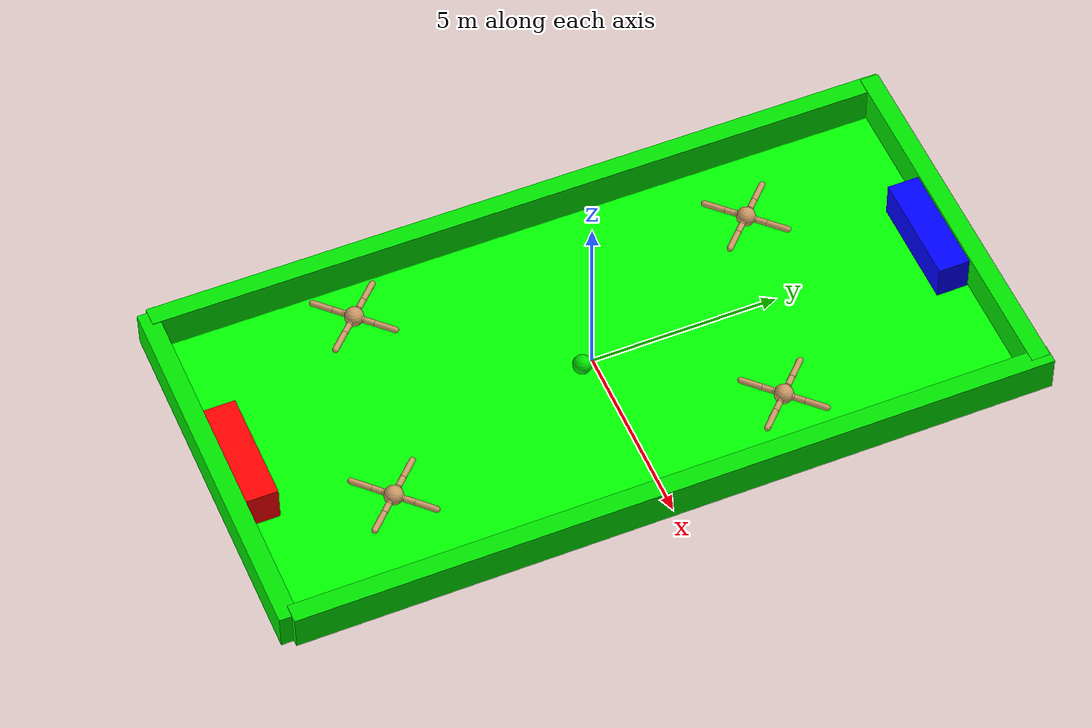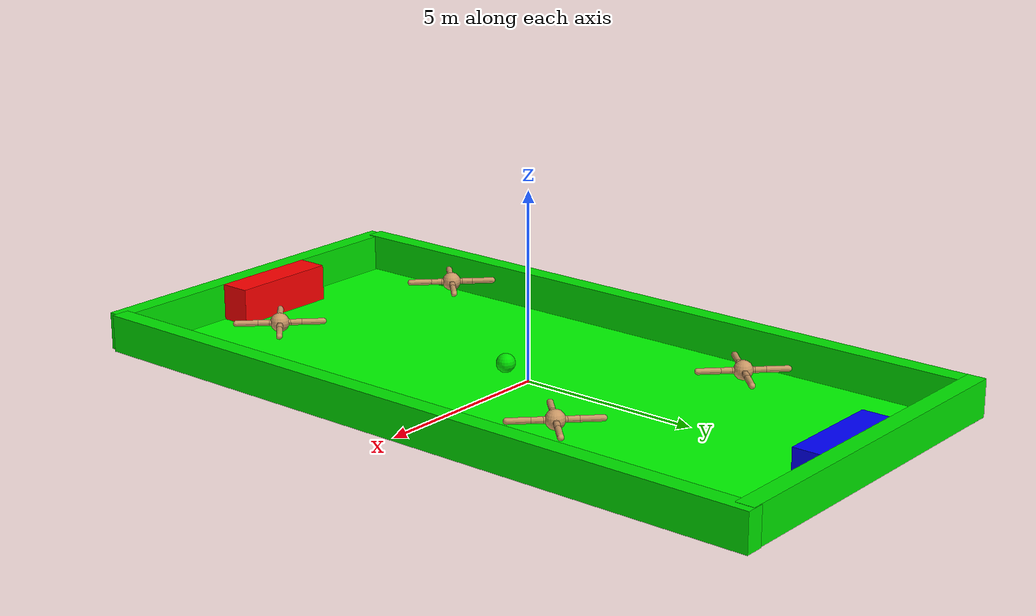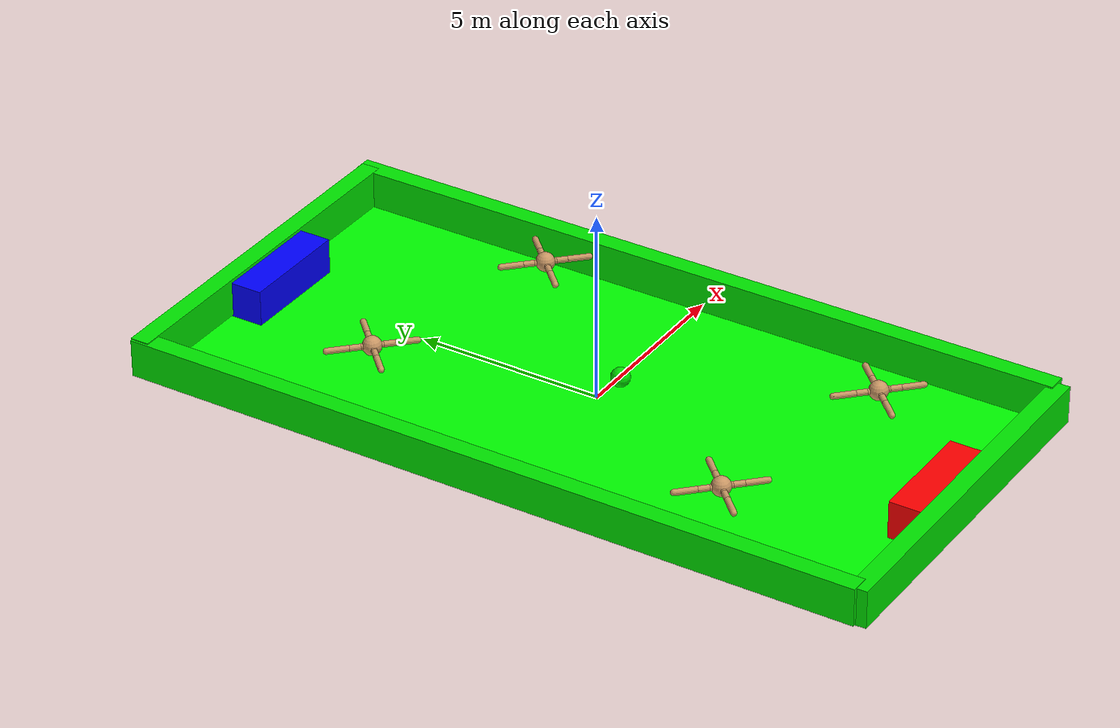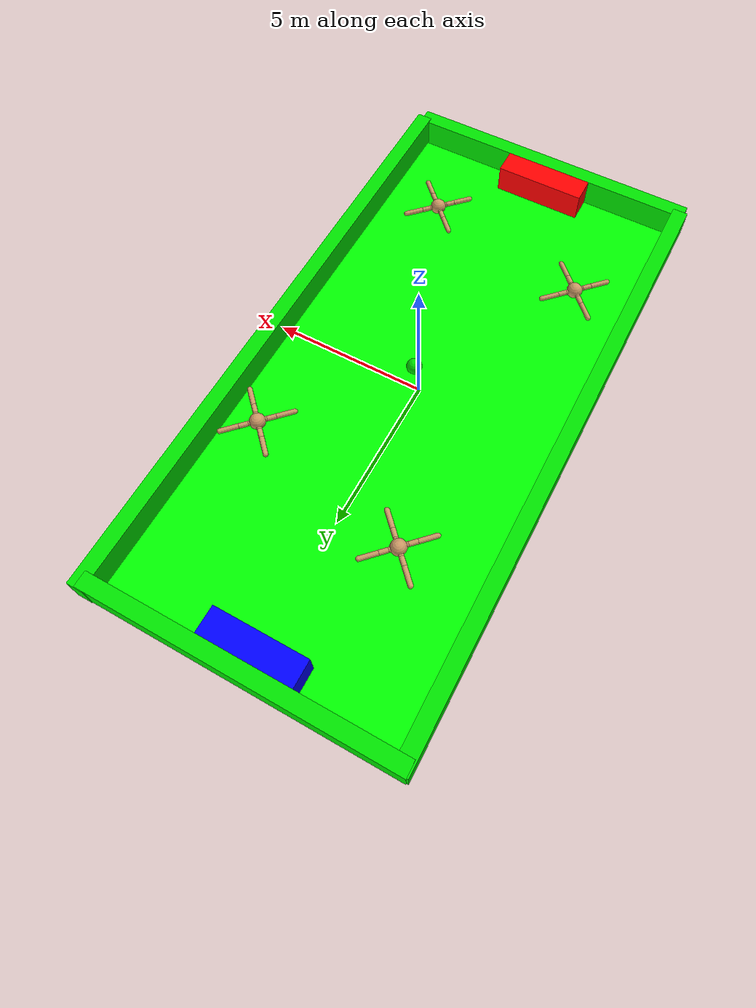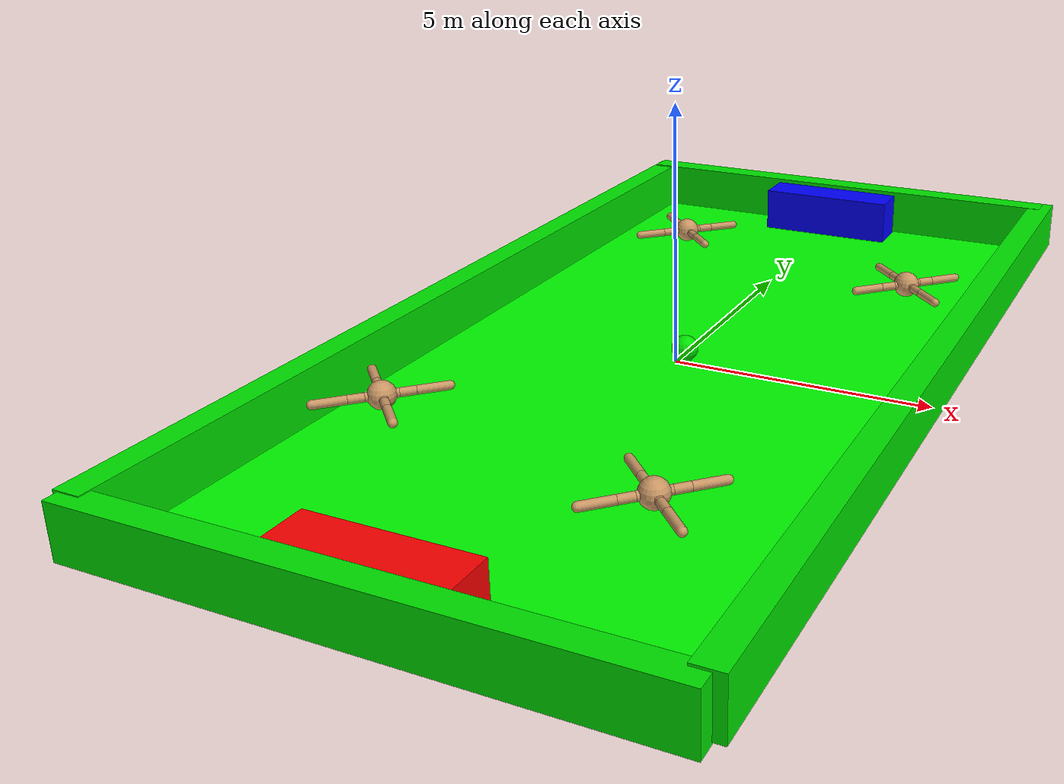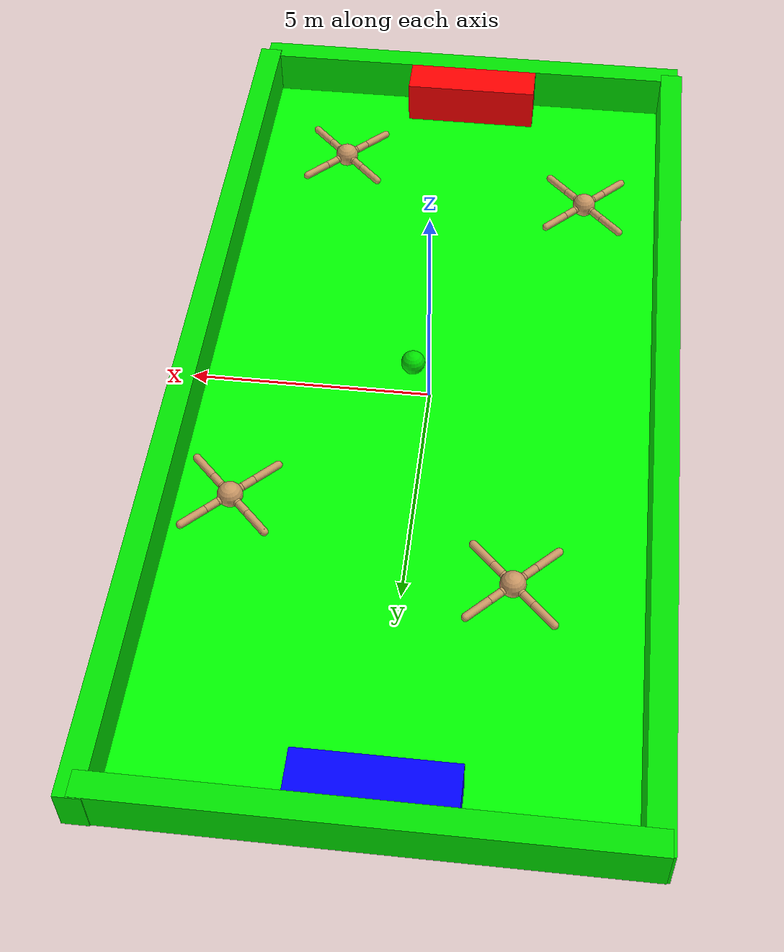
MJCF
<mujoco>
  <default>
    <joint armature="1" damping="1" limited="true"/>
    <geom condim="3" density="5.0" friction="1 0.5 0.5" margin="0.01" rgba="0.8 0.6 0.4 1"/>
  </default>
  <worldbody>
    <light diffuse=".5 .5 .5" pos="0 0 3" dir="0 0 -1" />
    <body pos="0 0 0" name="">
      <geom type="plane" size="5 10 2.220446E-16" euler="0 0 0" rgba="0 155 0 1" name="" />
    </body>
    <body pos="0.384349 -0.4288645 0.5066867" name="ball">
      <geom type="sphere" size="0.25" euler="0 0 0" rgba="0 .9 0 1" name="ball_geom0" />
      <freejoint />
      <inertial mass="0.5" diaginertia="0.1 0.1 0.1" pos="0 0 0"/>
    </body>
    <body pos="-2.933794 -5.17728 0.9" name="red_1">
      <camera name="red_1_track" mode="trackcom" pos="0 -3 0.3" xyaxes="1 0 0 0 0 1"/>
      <geom name="red_1_torso_geom" pos="0 0 0" size="0.25" type="sphere"/>
      <joint armature="0" damping="0" limited="false" margin="0.01" name="red_1_root" pos="0 0 0" type="free"/>
      <body name="red_1_front_left_leg" pos="0 0 0">
        <geom fromto="0.0 0.0 0.0 0.2 0.2 0.0" name="red_1_aux_1_geom" size="0.08" type="capsule"/>
        <body name="red_1_aux_1" pos="0.2 0.2 0">
          <joint axis="0 0 1" name="red_1_hip_1" pos="0.0 0.0 0.0" range="-30 30" type="hinge"/>
          <geom fromto="0.0 0.0 0.0 0.2 0.2 0.0" name="red_1_left_leg_geom" size="0.08" type="capsule"/>
          <body pos="0.2 0.2 0">
            <joint axis="-1 1 0" name="red_1_ankle_1" pos="0.0 0.0 0.0" range="30 70" type="hinge"/>
            <geom fromto="0.0 0.0 0.0 0.4 0.4 0.0" name="red_1_left_ankle_geom" size="0.08" type="capsule"/>
          </body>
        </body>
      </body>
      <body name="red_1_front_right_leg" pos="0 0 0">
        <geom fromto="0.0 0.0 0.0 -0.2 0.2 0.0" name="red_1_aux_2_geom" size="0.08" type="capsule"/>
        <body name="red_1_aux_2" pos="-0.2 0.2 0">
          <joint axis="0 0 1" name="red_1_hip_2" pos="0.0 0.0 0.0" range="-30 30" type="hinge"/>
          <geom fromto="0.0 0.0 0.0 -0.2 0.2 0.0" name="red_1_right_leg_geom" size="0.08" type="capsule"/>
          <body pos="-0.2 0.2 0">
            <joint axis="1 1 0" name="red_1_ankle_2" pos="0.0 0.0 0.0" range="-70 -30" type="hinge"/>
            <geom fromto="0.0 0.0 0.0 -0.4 0.4 0.0" name="red_1_right_ankle_geom" size="0.08" type="capsule"/>
          </body>
        </body>
      </body>
      <body name="red_1_back_leg" pos="0 0 0">
        <geom fromto="0.0 0.0 0.0 -0.2 -0.2 0.0" name="red_1_aux_3_geom" size="0.08" type="capsule"/>
        <body name="red_1_aux_3" pos="-0.2 -0.2 0">
          <joint axis="0 0 1" name="red_1_hip_3" pos="0.0 0.0 0.0" range="-30 30" type="hinge"/>
          <geom fromto="0.0 0.0 0.0 -0.2 -0.2 0.0" name="red_1_back_leg_geom" size="0.08" type="capsule"/>
          <body pos="-0.2 -0.2 0">
            <joint axis="-1 1 0" name="red_1_ankle_3" pos="0.0 0.0 0.0" range="-70 -30" type="hinge"/>
            <geom fromto="0.0 0.0 0.0 -0.4 -0.4 0.0" name="red_1_third_ankle_geom" size="0.08" type="capsule"/>
          </body>
        </body>
      </body>
      <body name="red_1_right_back_leg" pos="0 0 0">
        <geom fromto="0.0 0.0 0.0 0.2 -0.2 0.0" name="red_1_aux_4_geom" size="0.08" type="capsule"/>
        <body name="red_1_aux_4" pos="0.2 -0.2 0">
          <joint axis="0 0 1" name="red_1_hip_4" pos="0.0 0.0 0.0" range="-30 30" type="hinge"/>
          <geom fromto="0.0 0.0 0.0 0.2 -0.2 0.0" name="red_1_rightback_leg_geom" size="0.08" type="capsule"/>
          <body pos="0.2 -0.2 0">
            <joint axis="1 1 0" name="red_1_ankle_4" pos="0.0 0.0 0.0" range="30 70" type="hinge"/>
            <geom fromto="0.0 0.0 0.0 0.4 -0.4 0.0" name="red_1_fourth_ankle_geom" size="0.08" type="capsule"/>
          </body>
        </body>
      </body>
    </body>
    <body pos="-2.083207 5.104095 0.9" name="blue_1">
      <camera name="blue_1_track" mode="trackcom" pos="0 -3 0.3" xyaxes="1 0 0 0 0 1"/>
      <geom name="blue_1_torso_geom" pos="0 0 0" size="0.25" type="sphere"/>
      <joint armature="0" damping="0" limited="false" margin="0.01" name="blue_1_root" pos="0 0 0" type="free"/>
      <body name="blue_1_front_left_leg" pos="0 0 0">
        <geom fromto="0.0 0.0 0.0 0.2 0.2 0.0" name="blue_1_aux_1_geom" size="0.08" type="capsule"/>
        <body name="blue_1_aux_1" pos="0.2 0.2 0">
          <joint axis="0 0 1" name="blue_1_hip_1" pos="0.0 0.0 0.0" range="-30 30" type="hinge"/>
          <geom fromto="0.0 0.0 0.0 0.2 0.2 0.0" name="blue_1_left_leg_geom" size="0.08" type="capsule"/>
          <body pos="0.2 0.2 0">
            <joint axis="-1 1 0" name="blue_1_ankle_1" pos="0.0 0.0 0.0" range="30 70" type="hinge"/>
            <geom fromto="0.0 0.0 0.0 0.4 0.4 0.0" name="blue_1_left_ankle_geom" size="0.08" type="capsule"/>
          </body>
        </body>
      </body>
      <body name="blue_1_front_right_leg" pos="0 0 0">
        <geom fromto="0.0 0.0 0.0 -0.2 0.2 0.0" name="blue_1_aux_2_geom" size="0.08" type="capsule"/>
        <body name="blue_1_aux_2" pos="-0.2 0.2 0">
          <joint axis="0 0 1" name="blue_1_hip_2" pos="0.0 0.0 0.0" range="-30 30" type="hinge"/>
          <geom fromto="0.0 0.0 0.0 -0.2 0.2 0.0" name="blue_1_right_leg_geom" size="0.08" type="capsule"/>
          <body pos="-0.2 0.2 0">
            <joint axis="1 1 0" name="blue_1_ankle_2" pos="0.0 0.0 0.0" range="-70 -30" type="hinge"/>
            <geom fromto="0.0 0.0 0.0 -0.4 0.4 0.0" name="blue_1_right_ankle_geom" size="0.08" type="capsule"/>
          </body>
        </body>
      </body>
      <body name="blue_1_back_leg" pos="0 0 0">
        <geom fromto="0.0 0.0 0.0 -0.2 -0.2 0.0" name="blue_1_aux_3_geom" size="0.08" type="capsule"/>
        <body name="blue_1_aux_3" pos="-0.2 -0.2 0">
          <joint axis="0 0 1" name="blue_1_hip_3" pos="0.0 0.0 0.0" range="-30 30" type="hinge"/>
          <geom fromto="0.0 0.0 0.0 -0.2 -0.2 0.0" name="blue_1_back_leg_geom" size="0.08" type="capsule"/>
          <body pos="-0.2 -0.2 0">
            <joint axis="-1 1 0" name="blue_1_ankle_3" pos="0.0 0.0 0.0" range="-70 -30" type="hinge"/>
            <geom fromto="0.0 0.0 0.0 -0.4 -0.4 0.0" name="blue_1_third_ankle_geom" size="0.08" type="capsule"/>
          </body>
        </body>
      </body>
      <body name="blue_1_right_back_leg" pos="0 0 0">
        <geom fromto="0.0 0.0 0.0 0.2 -0.2 0.0" name="blue_1_aux_4_geom" size="0.08" type="capsule"/>
        <body name="blue_1_aux_4" pos="0.2 -0.2 0">
          <joint axis="0 0 1" name="blue_1_hip_4" pos="0.0 0.0 0.0" range="-30 30" type="hinge"/>
          <geom fromto="0.0 0.0 0.0 0.2 -0.2 0.0" name="blue_1_rightback_leg_geom" size="0.08" type="capsule"/>
          <body pos="0.2 -0.2 0">
            <joint axis="1 1 0" name="blue_1_ankle_4" pos="0.0 0.0 0.0" range="30 70" type="hinge"/>
            <geom fromto="0.0 0.0 0.0 0.4 -0.4 0.0" name="blue_1_fourth_ankle_geom" size="0.08" type="capsule"/>
          </body>
        </body>
      </body>
    </body>
    <body pos="3.445911 3.639287 0.9" name="blue_2">
      <camera name="blue_2_track" mode="trackcom" pos="0 -3 0.3" xyaxes="1 0 0 0 0 1"/>
      <geom name="blue_2_torso_geom" pos="0 0 0" size="0.25" type="sphere"/>
      <joint armature="0" damping="0" limited="false" margin="0.01" name="blue_2_root" pos="0 0 0" type="free"/>
      <body name="blue_2_front_left_leg" pos="0 0 0">
        <geom fromto="0.0 0.0 0.0 0.2 0.2 0.0" name="blue_2_aux_1_geom" size="0.08" type="capsule"/>
        <body name="blue_2_aux_1" pos="0.2 0.2 0">
          <joint axis="0 0 1" name="blue_2_hip_1" pos="0.0 0.0 0.0" range="-30 30" type="hinge"/>
          <geom fromto="0.0 0.0 0.0 0.2 0.2 0.0" name="blue_2_left_leg_geom" size="0.08" type="capsule"/>
          <body pos="0.2 0.2 0">
            <joint axis="-1 1 0" name="blue_2_ankle_1" pos="0.0 0.0 0.0" range="30 70" type="hinge"/>
            <geom fromto="0.0 0.0 0.0 0.4 0.4 0.0" name="blue_2_left_ankle_geom" size="0.08" type="capsule"/>
          </body>
        </body>
      </body>
      <body name="blue_2_front_right_leg" pos="0 0 0">
        <geom fromto="0.0 0.0 0.0 -0.2 0.2 0.0" name="blue_2_aux_2_geom" size="0.08" type="capsule"/>
        <body name="blue_2_aux_2" pos="-0.2 0.2 0">
          <joint axis="0 0 1" name="blue_2_hip_2" pos="0.0 0.0 0.0" range="-30 30" type="hinge"/>
          <geom fromto="0.0 0.0 0.0 -0.2 0.2 0.0" name="blue_2_right_leg_geom" size="0.08" type="capsule"/>
          <body pos="-0.2 0.2 0">
            <joint axis="1 1 0" name="blue_2_ankle_2" pos="0.0 0.0 0.0" range="-70 -30" type="hinge"/>
            <geom fromto="0.0 0.0 0.0 -0.4 0.4 0.0" name="blue_2_right_ankle_geom" size="0.08" type="capsule"/>
          </body>
        </body>
      </body>
      <body name="blue_2_back_leg" pos="0 0 0">
        <geom fromto="0.0 0.0 0.0 -0.2 -0.2 0.0" name="blue_2_aux_3_geom" size="0.08" type="capsule"/>
        <body name="blue_2_aux_3" pos="-0.2 -0.2 0">
          <joint axis="0 0 1" name="blue_2_hip_3" pos="0.0 0.0 0.0" range="-30 30" type="hinge"/>
          <geom fromto="0.0 0.0 0.0 -0.2 -0.2 0.0" name="blue_2_back_leg_geom" size="0.08" type="capsule"/>
          <body pos="-0.2 -0.2 0">
            <joint axis="-1 1 0" name="blue_2_ankle_3" pos="0.0 0.0 0.0" range="-70 -30" type="hinge"/>
            <geom fromto="0.0 0.0 0.0 -0.4 -0.4 0.0" name="blue_2_third_ankle_geom" size="0.08" type="capsule"/>
          </body>
        </body>
      </body>
      <body name="blue_2_right_back_leg" pos="0 0 0">
        <geom fromto="0.0 0.0 0.0 0.2 -0.2 0.0" name="blue_2_aux_4_geom" size="0.08" type="capsule"/>
        <body name="blue_2_aux_4" pos="0.2 -0.2 0">
          <joint axis="0 0 1" name="blue_2_hip_4" pos="0.0 0.0 0.0" range="-30 30" type="hinge"/>
          <geom fromto="0.0 0.0 0.0 0.2 -0.2 0.0" name="blue_2_rightback_leg_geom" size="0.08" type="capsule"/>
          <body pos="0.2 -0.2 0">
            <joint axis="1 1 0" name="blue_2_ankle_4" pos="0.0 0.0 0.0" range="30 70" type="hinge"/>
            <geom fromto="0.0 0.0 0.0 0.4 -0.4 0.0" name="blue_2_fourth_ankle_geom" size="0.08" type="capsule"/>
          </body>
        </body>
      </body>
    </body>
    <body pos="2.578654 -6.291026 0.9" name="red_2">
      <camera name="red_2_track" mode="trackcom" pos="0 -3 0.3" xyaxes="1 0 0 0 0 1"/>
      <geom name="red_2_torso_geom" pos="0 0 0" size="0.25" type="sphere"/>
      <joint armature="0" damping="0" limited="false" margin="0.01" name="red_2_root" pos="0 0 0" type="free"/>
      <body name="red_2_front_left_leg" pos="0 0 0">
        <geom fromto="0.0 0.0 0.0 0.2 0.2 0.0" name="red_2_aux_1_geom" size="0.08" type="capsule"/>
        <body name="red_2_aux_1" pos="0.2 0.2 0">
          <joint axis="0 0 1" name="red_2_hip_1" pos="0.0 0.0 0.0" range="-30 30" type="hinge"/>
          <geom fromto="0.0 0.0 0.0 0.2 0.2 0.0" name="red_2_left_leg_geom" size="0.08" type="capsule"/>
          <body pos="0.2 0.2 0">
            <joint axis="-1 1 0" name="red_2_ankle_1" pos="0.0 0.0 0.0" range="30 70" type="hinge"/>
            <geom fromto="0.0 0.0 0.0 0.4 0.4 0.0" name="red_2_left_ankle_geom" size="0.08" type="capsule"/>
          </body>
        </body>
      </body>
      <body name="red_2_front_right_leg" pos="0 0 0">
        <geom fromto="0.0 0.0 0.0 -0.2 0.2 0.0" name="red_2_aux_2_geom" size="0.08" type="capsule"/>
        <body name="red_2_aux_2" pos="-0.2 0.2 0">
          <joint axis="0 0 1" name="red_2_hip_2" pos="0.0 0.0 0.0" range="-30 30" type="hinge"/>
          <geom fromto="0.0 0.0 0.0 -0.2 0.2 0.0" name="red_2_right_leg_geom" size="0.08" type="capsule"/>
          <body pos="-0.2 0.2 0">
            <joint axis="1 1 0" name="red_2_ankle_2" pos="0.0 0.0 0.0" range="-70 -30" type="hinge"/>
            <geom fromto="0.0 0.0 0.0 -0.4 0.4 0.0" name="red_2_right_ankle_geom" size="0.08" type="capsule"/>
          </body>
        </body>
      </body>
      <body name="red_2_back_leg" pos="0 0 0">
        <geom fromto="0.0 0.0 0.0 -0.2 -0.2 0.0" name="red_2_aux_3_geom" size="0.08" type="capsule"/>
        <body name="red_2_aux_3" pos="-0.2 -0.2 0">
          <joint axis="0 0 1" name="red_2_hip_3" pos="0.0 0.0 0.0" range="-30 30" type="hinge"/>
          <geom fromto="0.0 0.0 0.0 -0.2 -0.2 0.0" name="red_2_back_leg_geom" size="0.08" type="capsule"/>
          <body pos="-0.2 -0.2 0">
            <joint axis="-1 1 0" name="red_2_ankle_3" pos="0.0 0.0 0.0" range="-70 -30" type="hinge"/>
            <geom fromto="0.0 0.0 0.0 -0.4 -0.4 0.0" name="red_2_third_ankle_geom" size="0.08" type="capsule"/>
          </body>
        </body>
      </body>
      <body name="red_2_right_back_leg" pos="0 0 0">
        <geom fromto="0.0 0.0 0.0 0.2 -0.2 0.0" name="red_2_aux_4_geom" size="0.08" type="capsule"/>
        <body name="red_2_aux_4" pos="0.2 -0.2 0">
          <joint axis="0 0 1" name="red_2_hip_4" pos="0.0 0.0 0.0" range="-30 30" type="hinge"/>
          <geom fromto="0.0 0.0 0.0 0.2 -0.2 0.0" name="red_2_rightback_leg_geom" size="0.08" type="capsule"/>
          <body pos="0.2 -0.2 0">
            <joint axis="1 1 0" name="red_2_ankle_4" pos="0.0 0.0 0.0" range="30 70" type="hinge"/>
            <geom fromto="0.0 0.0 0.0 0.4 -0.4 0.0" name="red_2_fourth_ankle_geom" size="0.08" type="capsule"/>
          </body>
        </body>
      </body>
    </body>
    <body pos="0.0105145 -9.903946 0.4756855" name="">
      <geom type="box" size="5 0.25 0.5" euler="0 0 0" rgba="0 .9 0 1" name="" />
    </body>
    <body pos="-0.02898121 9.897667 0.5220423" name="">
      <geom type="box" size="5 0.25 0.5" euler="0 0 0" rgba="0 .9 0 1" name="" />
    </body>
    <body pos="4.949838 0.1651472 0.5159721" name="">
      <geom type="box" size="0.25 10 0.5" euler="0 0 0" rgba="0 .9 0 1" name="" />
    </body>
    <body pos="-4.836163 0.1186582 0.4941959" name="">
      <geom type="box" size="0.25 10 0.5" euler="0 0 0" rgba="0 .9 0 1" name="" />
    </body>
    <body pos="-0.03814352 9.305141 0.4330401" name="target_blue">
      <geom type="box" size="1.5 0.5 0.5" euler="0 0 0" rgba="0 0 255 1" name="target_blue_geom0" />
    </body>
    <body pos="-0.06423718 -9.324606 0.4754632" name="target_red">
      <geom type="box" size="1.5 0.5 0.5" euler="0 0 0" rgba="255 0 0 1" name="target_red_geom0" />
    </body>
  </worldbody>
  <sensor />
  <actuator>
    <motor ctrllimited="true" ctrlrange="-1.0 1.0" joint="blue_1_hip_4" gear="150" name="blue_1_hip_4_motor"/>
    <motor ctrllimited="true" ctrlrange="-1.0 1.0" joint="blue_1_ankle_4" gear="150" name="blue_1_ankle_4_motor"/>
    <motor ctrllimited="true" ctrlrange="-1.0 1.0" joint="blue_1_hip_1" gear="150" name="blue_1_hip_1_motor"/>
    <motor ctrllimited="true" ctrlrange="-1.0 1.0" joint="blue_1_ankle_1" gear="150" name="blue_1_ankle_1_motor"/>
    <motor ctrllimited="true" ctrlrange="-1.0 1.0" joint="blue_1_hip_2" gear="150" name="blue_1_hip_2_motor"/>
    <motor ctrllimited="true" ctrlrange="-1.0 1.0" joint="blue_1_ankle_2" gear="150" name="blue_1_ankle_2_motor"/>
    <motor ctrllimited="true" ctrlrange="-1.0 1.0" joint="blue_1_hip_3" gear="150" name="blue_1_hip_3_motor"/>
    <motor ctrllimited="true" ctrlrange="-1.0 1.0" joint="blue_1_ankle_3" gear="150" name="blue_1_ankle_3_motor"/>
    <motor ctrllimited="true" ctrlrange="-1.0 1.0" joint="blue_2_hip_4" gear="150" name="blue_2_hip_4_motor"/>
    <motor ctrllimited="true" ctrlrange="-1.0 1.0" joint="blue_2_ankle_4" gear="150" name="blue_2_ankle_4_motor"/>
    <motor ctrllimited="true" ctrlrange="-1.0 1.0" joint="blue_2_hip_1" gear="150" name="blue_2_hip_1_motor"/>
    <motor ctrllimited="true" ctrlrange="-1.0 1.0" joint="blue_2_ankle_1" gear="150" name="blue_2_ankle_1_motor"/>
    <motor ctrllimited="true" ctrlrange="-1.0 1.0" joint="blue_2_hip_2" gear="150" name="blue_2_hip_2_motor"/>
    <motor ctrllimited="true" ctrlrange="-1.0 1.0" joint="blue_2_ankle_2" gear="150" name="blue_2_ankle_2_motor"/>
    <motor ctrllimited="true" ctrlrange="-1.0 1.0" joint="blue_2_hip_3" gear="150" name="blue_2_hip_3_motor"/>
    <motor ctrllimited="true" ctrlrange="-1.0 1.0" joint="blue_2_ankle_3" gear="150" name="blue_2_ankle_3_motor"/>
    <motor ctrllimited="true" ctrlrange="-1.0 1.0" joint="red_1_hip_4" gear="150" name="red_1_hip_4_motor"/>
    <motor ctrllimited="true" ctrlrange="-1.0 1.0" joint="red_1_ankle_4" gear="150" name="red_1_ankle_4_motor"/>
    <motor ctrllimited="true" ctrlrange="-1.0 1.0" joint="red_1_hip_1" gear="150" name="red_1_hip_1_motor"/>
    <motor ctrllimited="true" ctrlrange="-1.0 1.0" joint="red_1_ankle_1" gear="150" name="red_1_ankle_1_motor"/>
    <motor ctrllimited="true" ctrlrange="-1.0 1.0" joint="red_1_hip_2" gear="150" name="red_1_hip_2_motor"/>
    <motor ctrllimited="true" ctrlrange="-1.0 1.0" joint="red_1_ankle_2" gear="150" name="red_1_ankle_2_motor"/>
    <motor ctrllimited="true" ctrlrange="-1.0 1.0" joint="red_1_hip_3" gear="150" name="red_1_hip_3_motor"/>
    <motor ctrllimited="true" ctrlrange="-1.0 1.0" joint="red_1_ankle_3" gear="150" name="red_1_ankle_3_motor"/>
    <motor ctrllimited="true" ctrlrange="-1.0 1.0" joint="red_2_hip_4" gear="150" name="red_2_hip_4_motor"/>
    <motor ctrllimited="true" ctrlrange="-1.0 1.0" joint="red_2_ankle_4" gear="150" name="red_2_ankle_4_motor"/>
    <motor ctrllimited="true" ctrlrange="-1.0 1.0" joint="red_2_hip_1" gear="150" name="red_2_hip_1_motor"/>
    <motor ctrllimited="true" ctrlrange="-1.0 1.0" joint="red_2_ankle_1" gear="150" name="red_2_ankle_1_motor"/>
    <motor ctrllimited="true" ctrlrange="-1.0 1.0" joint="red_2_hip_2" gear="150" name="red_2_hip_2_motor"/>
    <motor ctrllimited="true" ctrlrange="-1.0 1.0" joint="red_2_ankle_2" gear="150" name="red_2_ankle_2_motor"/>
    <motor ctrllimited="true" ctrlrange="-1.0 1.0" joint="red_2_hip_3" gear="150" name="red_2_hip_3_motor"/>
    <motor ctrllimited="true" ctrlrange="-1.0 1.0" joint="red_2_ankle_3" gear="150" name="red_2_ankle_3_motor"/>
  </actuator>
</mujoco>
